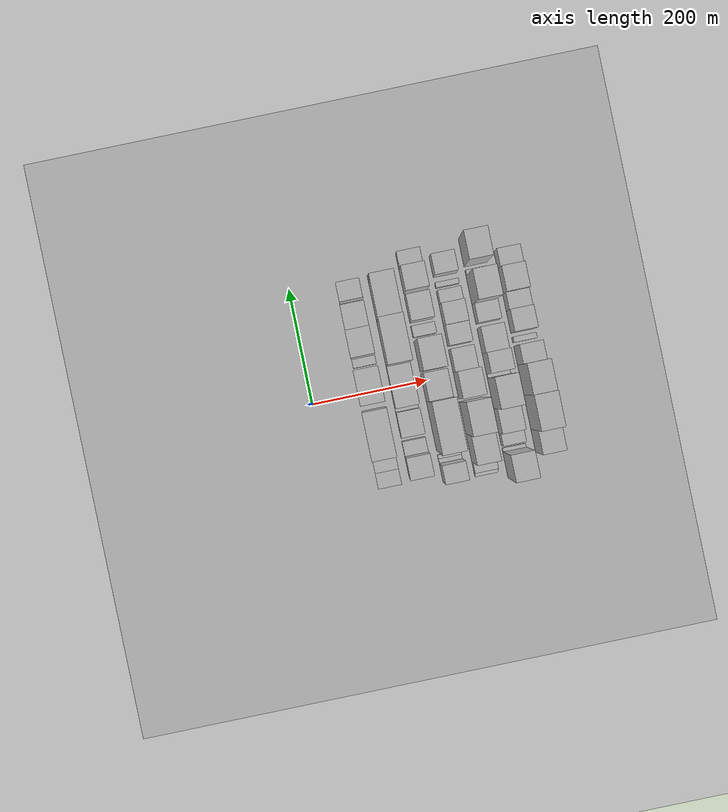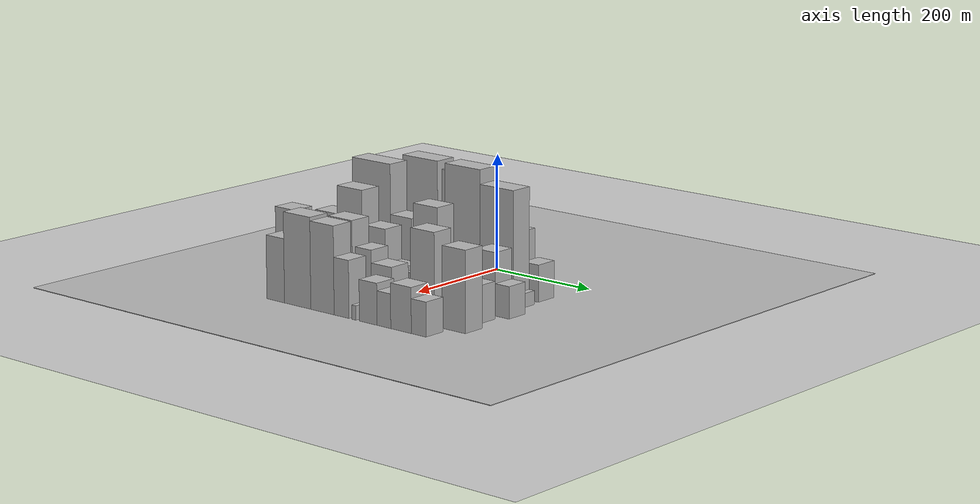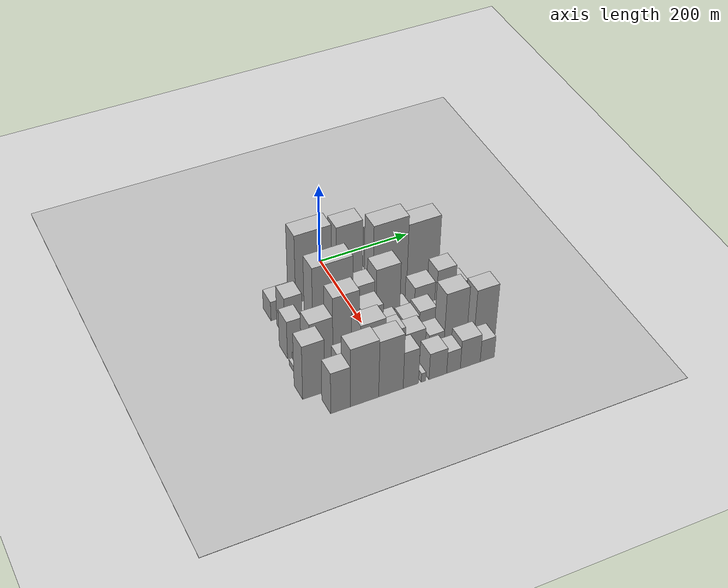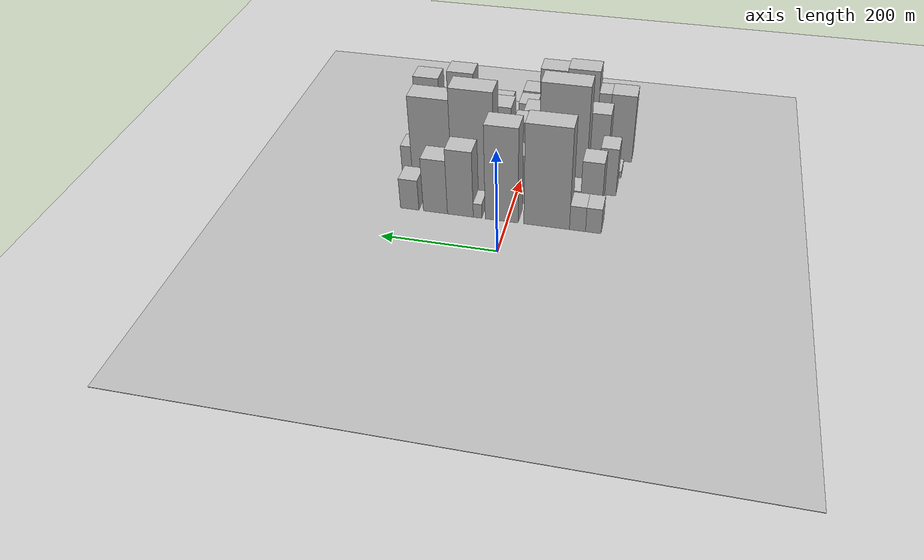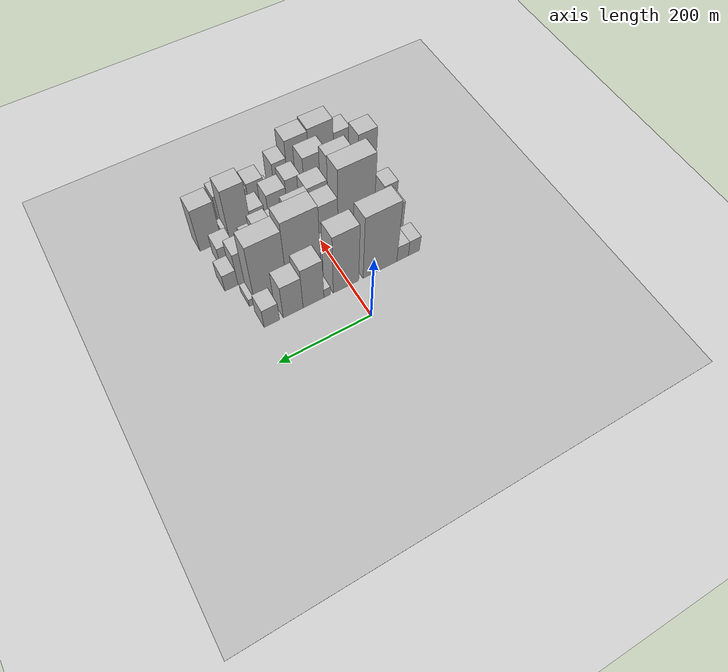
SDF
<sdf version="1.6">
 <world name="default">
  <include><name>ground_plane_1</name><uri>model://HANNAS_ground_plane</uri></include>
  <include>
   <name>ground_plane_2</name>
   <uri>model://HANNAS_ground_plane</uri>
   <pose>100 0 0  0 0 0</pose>
  </include>
  <model name="building_25">
   <static>1</static>
   <pose>100.0000 -148.1943 0 0.000000 0.000000 0.000000</pose>
   <link name="link">
    <pose>0 0 25.50 0 0 0</pose>
    <collision name="collision"><geometry><box><size>40.0000 26.5778 51.0000</size></box></geometry></collision>
    <visual name="visual">
     <cast_shadows>0</cast_shadows>
     <geometry><box><size>40.0000 26.5778 51.0000</size></box></geometry>
     <material>
      <script>
       <uri>model://HANNAS_wall/materials/scripts</uri>
       <uri>model://HANNAS_wall/materials/textures</uri>
       <name>vrc/HANNAS_wall</name>
      </script>
     </material>
    </visual>
   </link>
  </model>
  <model name="building_26">
   <static>1</static>
   <pose>100.0000 -121.1936 0 0.000000 0.000000 0.000000</pose>
   <link name="link">
    <pose>0 0 25.50 0 0 0</pose>
    <collision name="collision"><geometry><box><size>40.0000 27.4237 51.0000</size></box></geometry></collision>
    <visual name="visual">
     <cast_shadows>0</cast_shadows>
     <geometry><box><size>40.0000 27.4237 51.0000</size></box></geometry>
     <material>
      <script>
       <uri>model://HANNAS_wall/materials/scripts</uri>
       <uri>model://HANNAS_wall/materials/textures</uri>
       <name>vrc/HANNAS_wall</name>
      </script>
     </material>
    </visual>
   </link>
  </model>
  <model name="building_27">
   <static>1</static>
   <pose>100.0000 -68.1438 0 0.000000 0.000000 0.000000</pose>
   <link name="link">
    <pose>0 0 102.00 0 0 0</pose>
    <collision name="collision"><geometry><box><size>40.0000 78.6760 204.0000</size></box></geometry></collision>
    <visual name="visual">
     <cast_shadows>0</cast_shadows>
     <geometry><box><size>40.0000 78.6760 204.0000</size></box></geometry>
     <material>
      <script>
       <uri>model://HANNAS_wall/materials/scripts</uri>
       <uri>model://HANNAS_wall/materials/textures</uri>
       <name>vrc/HANNAS_wall</name>
      </script>
     </material>
    </visual>
   </link>
  </model>
  <model name="building_28">
   <static>1</static>
   <pose>100.0000 10.0778 0 0.000000 0.000000 0.000000</pose>
   <link name="link">
    <pose>0 0 96.00 0 0 0</pose>
    <collision name="collision"><geometry><box><size>40.0000 57.7671 192.0000</size></box></geometry></collision>
    <visual name="visual">
     <cast_shadows>0</cast_shadows>
     <geometry><box><size>40.0000 57.7671 192.0000</size></box></geometry>
     <material>
      <script>
       <uri>model://HANNAS_wall/materials/scripts</uri>
       <uri>model://HANNAS_wall/materials/textures</uri>
       <name>vrc/HANNAS_wall</name>
      </script>
     </material>
    </visual>
   </link>
  </model>
  <model name="building_29">
   <static>1</static>
   <pose>100.0000 52.5139 0 0.000000 0.000000 0.000000</pose>
   <link name="link">
    <pose>0 0 15.00 0 0 0</pose>
    <collision name="collision"><geometry><box><size>40.0000 15.1052 30.0000</size></box></geometry></collision>
    <visual name="visual">
     <cast_shadows>0</cast_shadows>
     <geometry><box><size>40.0000 15.1052 30.0000</size></box></geometry>
     <material>
      <script>
       <uri>model://HANNAS_wall/materials/scripts</uri>
       <uri>model://HANNAS_wall/materials/textures</uri>
       <name>vrc/HANNAS_wall</name>
      </script>
     </material>
    </visual>
   </link>
  </model>
  <model name="building_30">
   <static>1</static>
   <pose>100.0000 83.0617 0 0.000000 0.000000 0.000000</pose>
   <link name="link">
    <pose>0 0 67.50 0 0 0</pose>
    <collision name="collision"><geometry><box><size>40.0000 45.9904 135.0000</size></box></geometry></collision>
    <visual name="visual">
     <cast_shadows>0</cast_shadows>
     <geometry><box><size>40.0000 45.9904 135.0000</size></box></geometry>
     <material>
      <script>
       <uri>model://HANNAS_wall/materials/scripts</uri>
       <uri>model://HANNAS_wall/materials/textures</uri>
       <name>vrc/HANNAS_wall</name>
      </script>
     </material>
    </visual>
   </link>
  </model>
  <model name="building_31">
   <static>1</static>
   <pose>100.0000 127.6087 0 0.000000 0.000000 0.000000</pose>
   <link name="link">
    <pose>0 0 55.50 0 0 0</pose>
    <collision name="collision"><geometry><box><size>40.0000 43.1036 111.0000</size></box></geometry></collision>
    <visual name="visual">
     <cast_shadows>0</cast_shadows>
     <geometry><box><size>40.0000 43.1036 111.0000</size></box></geometry>
     <material>
      <script>
       <uri>model://HANNAS_wall/materials/scripts</uri>
       <uri>model://HANNAS_wall/materials/textures</uri>
       <name>vrc/HANNAS_wall</name>
      </script>
     </material>
    </visual>
   </link>
  </model>
  <model name="building_32">
   <static>1</static>
   <pose>100.0000 173.8281 0 0.000000 0.000000 0.000000</pose>
   <link name="link">
    <pose>0 0 31.50 0 0 0</pose>
    <collision name="collision"><geometry><box><size>40.0000 33.3352 63.0000</size></box></geometry></collision>
    <visual name="visual">
     <cast_shadows>0</cast_shadows>
     <geometry><box><size>40.0000 33.3352 63.0000</size></box></geometry>
     <material>
      <script>
       <uri>model://HANNAS_wall/materials/scripts</uri>
       <uri>model://HANNAS_wall/materials/textures</uri>
       <name>vrc/HANNAS_wall</name>
      </script>
     </material>
    </visual>
   </link>
  </model>
  <model name="building_72">
   <static>1</static>
   <pose>155.0000 -136.3937 0 0.000000 0.000000 0.000000</pose>
   <link name="link">
    <pose>0 0 52.50 0 0 0</pose>
    <collision name="collision"><geometry><box><size>40.0000 37.5116 105.0000</size></box></geometry></collision>
    <visual name="visual">
     <cast_shadows>0</cast_shadows>
     <geometry><box><size>40.0000 37.5116 105.0000</size></box></geometry>
     <material>
      <script>
       <uri>model://HANNAS_wall/materials/scripts</uri>
       <uri>model://HANNAS_wall/materials/textures</uri>
       <name>vrc/HANNAS_wall</name>
      </script>
     </material>
    </visual>
   </link>
  </model>
  <model name="building_73">
   <static>1</static>
   <pose>155.0000 -105.1017 0 0.000000 0.000000 0.000000</pose>
   <link name="link">
    <pose>0 0 21.00 0 0 0</pose>
    <collision name="collision"><geometry><box><size>40.0000 25.0723 42.0000</size></box></geometry></collision>
    <visual name="visual">
     <cast_shadows>0</cast_shadows>
     <geometry><box><size>40.0000 25.0723 42.0000</size></box></geometry>
     <material>
      <script>
       <uri>model://HANNAS_wall/materials/scripts</uri>
       <uri>model://HANNAS_wall/materials/textures</uri>
       <name>vrc/HANNAS_wall</name>
      </script>
     </material>
    </visual>
   </link>
  </model>
  <model name="building_74">
   <static>1</static>
   <pose>155.0000 -63.8630 0 0.000000 0.000000 0.000000</pose>
   <link name="link">
    <pose>0 0 37.50 0 0 0</pose>
    <collision name="collision"><geometry><box><size>40.0000 43.4051 75.0000</size></box></geometry></collision>
    <visual name="visual">
     <cast_shadows>0</cast_shadows>
     <geometry><box><size>40.0000 43.4051 75.0000</size></box></geometry>
     <material>
      <script>
       <uri>model://HANNAS_wall/materials/scripts</uri>
       <uri>model://HANNAS_wall/materials/textures</uri>
       <name>vrc/HANNAS_wall</name>
      </script>
     </material>
    </visual>
   </link>
  </model>
  <model name="building_75">
   <static>1</static>
   <pose>155.0000 -38.7111 0 0.000000 0.000000 0.000000</pose>
   <link name="link">
    <pose>0 0 7.50 0 0 0</pose>
    <collision name="collision"><geometry><box><size>40.0000 6.8988 15.0000</size></box></geometry></collision>
    <visual name="visual">
     <cast_shadows>0</cast_shadows>
     <geometry><box><size>40.0000 6.8988 15.0000</size></box></geometry>
     <material>
      <script>
       <uri>model://HANNAS_wall/materials/scripts</uri>
       <uri>model://HANNAS_wall/materials/textures</uri>
       <name>vrc/HANNAS_wall</name>
      </script>
     </material>
    </visual>
   </link>
  </model>
  <model name="building_76">
   <static>1</static>
   <pose>155.0000 -17.6326 0 0.000000 0.000000 0.000000</pose>
   <link name="link">
    <pose>0 0 51.00 0 0 0</pose>
    <collision name="collision"><geometry><box><size>40.0000 35.2581 102.0000</size></box></geometry></collision>
    <visual name="visual">
     <cast_shadows>0</cast_shadows>
     <geometry><box><size>40.0000 35.2581 102.0000</size></box></geometry>
     <material>
      <script>
       <uri>model://HANNAS_wall/materials/scripts</uri>
       <uri>model://HANNAS_wall/materials/textures</uri>
       <name>vrc/HANNAS_wall</name>
      </script>
     </material>
    </visual>
   </link>
  </model>
  <model name="building_77">
   <static>1</static>
   <pose>155.0000 17.8826 0 0.000000 0.000000 0.000000</pose>
   <link name="link">
    <pose>0 0 34.50 0 0 0</pose>
    <collision name="collision"><geometry><box><size>40.0000 35.7725 69.0000</size></box></geometry></collision>
    <visual name="visual">
     <cast_shadows>0</cast_shadows>
     <geometry><box><size>40.0000 35.7725 69.0000</size></box></geometry>
     <material>
      <script>
       <uri>model://HANNAS_wall/materials/scripts</uri>
       <uri>model://HANNAS_wall/materials/textures</uri>
       <name>vrc/HANNAS_wall</name>
      </script>
     </material>
    </visual>
   </link>
  </model>
  <model name="building_78">
   <static>1</static>
   <pose>155.0000 73.6876 0 0.000000 0.000000 0.000000</pose>
   <link name="link">
    <pose>0 0 109.50 0 0 0</pose>
    <collision name="collision"><geometry><box><size>40.0000 75.8374 219.0000</size></box></geometry></collision>
    <visual name="visual">
     <cast_shadows>0</cast_shadows>
     <geometry><box><size>40.0000 75.8374 219.0000</size></box></geometry>
     <material>
      <script>
       <uri>model://HANNAS_wall/materials/scripts</uri>
       <uri>model://HANNAS_wall/materials/textures</uri>
       <name>vrc/HANNAS_wall</name>
      </script>
     </material>
    </visual>
   </link>
  </model>
  <model name="building_79">
   <static>1</static>
   <pose>155.0000 147.2306 0 0.000000 0.000000 0.000000</pose>
   <link name="link">
    <pose>0 0 97.50 0 0 0</pose>
    <collision name="collision"><geometry><box><size>40.0000 71.2486 195.0000</size></box></geometry></collision>
    <visual name="visual">
     <cast_shadows>0</cast_shadows>
     <geometry><box><size>40.0000 71.2486 195.0000</size></box></geometry>
     <material>
      <script>
       <uri>model://HANNAS_wall/materials/scripts</uri>
       <uri>model://HANNAS_wall/materials/textures</uri>
       <name>vrc/HANNAS_wall</name>
      </script>
     </material>
    </visual>
   </link>
  </model>
  <model name="building_80">
   <static>1</static>
   <pose>155.0000 188.7575 0 0.000000 0.000000 0.000000</pose>
   <link name="link">
    <pose>0 0 12.00 0 0 0</pose>
    <collision name="collision"><geometry><box><size>40.0000 11.8053 24.0000</size></box></geometry></collision>
    <visual name="visual">
     <cast_shadows>0</cast_shadows>
     <geometry><box><size>40.0000 11.8053 24.0000</size></box></geometry>
     <material>
      <script>
       <uri>model://HANNAS_wall/materials/scripts</uri>
       <uri>model://HANNAS_wall/materials/textures</uri>
       <name>vrc/HANNAS_wall</name>
      </script>
     </material>
    </visual>
   </link>
  </model>
  <model name="building_120">
   <static>1</static>
   <pose>210.0000 -157.8847 0 0.000000 0.000000 0.000000</pose>
   <link name="link">
    <pose>0 0 49.50 0 0 0</pose>
    <collision name="collision"><geometry><box><size>40.0000 31.7828 99.0000</size></box></geometry></collision>
    <visual name="visual">
     <cast_shadows>0</cast_shadows>
     <geometry><box><size>40.0000 31.7828 99.0000</size></box></geometry>
     <material>
      <script>
       <uri>model://HANNAS_wall/materials/scripts</uri>
       <uri>model://HANNAS_wall/materials/textures</uri>
       <name>vrc/HANNAS_wall</name>
      </script>
     </material>
    </visual>
   </link>
  </model>
  <model name="building_121">
   <static>1</static>
   <pose>210.0000 -138.2729 0 0.000000 0.000000 0.000000</pose>
   <link name="link">
    <pose>0 0 7.50 0 0 0</pose>
    <collision name="collision"><geometry><box><size>40.0000 7.4409 15.0000</size></box></geometry></collision>
    <visual name="visual">
     <cast_shadows>0</cast_shadows>
     <geometry><box><size>40.0000 7.4409 15.0000</size></box></geometry>
     <material>
      <script>
       <uri>model://HANNAS_wall/materials/scripts</uri>
       <uri>model://HANNAS_wall/materials/textures</uri>
       <name>vrc/HANNAS_wall</name>
      </script>
     </material>
    </visual>
   </link>
  </model>
  <model name="building_122">
   <static>1</static>
   <pose>210.0000 -131.0907 0 0.000000 0.000000 0.000000</pose>
   <link name="link">
    <pose>0 0 7.50 0 0 0</pose>
    <collision name="collision"><geometry><box><size>40.0000 6.9236 15.0000</size></box></geometry></collision>
    <visual name="visual">
     <cast_shadows>0</cast_shadows>
     <geometry><box><size>40.0000 6.9236 15.0000</size></box></geometry>
     <material>
      <script>
       <uri>model://HANNAS_wall/materials/scripts</uri>
       <uri>model://HANNAS_wall/materials/textures</uri>
       <name>vrc/HANNAS_wall</name>
      </script>
     </material>
    </visual>
   </link>
  </model>
  <model name="building_123">
   <static>1</static>
   <pose>210.0000 -77.0937 0 0.000000 0.000000 0.000000</pose>
   <link name="link">
    <pose>0 0 108.00 0 0 0</pose>
    <collision name="collision"><geometry><box><size>40.0000 85.0703 216.0000</size></box></geometry></collision>
    <visual name="visual">
     <cast_shadows>0</cast_shadows>
     <geometry><box><size>40.0000 85.0703 216.0000</size></box></geometry>
     <material>
      <script>
       <uri>model://HANNAS_wall/materials/scripts</uri>
       <uri>model://HANNAS_wall/materials/textures</uri>
       <name>vrc/HANNAS_wall</name>
      </script>
     </material>
    </visual>
   </link>
  </model>
  <model name="building_124">
   <static>1</static>
   <pose>210.0000 -10.9256 0 0.000000 0.000000 0.000000</pose>
   <link name="link">
    <pose>0 0 66.00 0 0 0</pose>
    <collision name="collision"><geometry><box><size>40.0000 47.2660 132.0000</size></box></geometry></collision>
    <visual name="visual">
     <cast_shadows>0</cast_shadows>
     <geometry><box><size>40.0000 47.2660 132.0000</size></box></geometry>
     <material>
      <script>
       <uri>model://HANNAS_wall/materials/scripts</uri>
       <uri>model://HANNAS_wall/materials/textures</uri>
       <name>vrc/HANNAS_wall</name>
      </script>
     </material>
    </visual>
   </link>
  </model>
  <model name="building_125">
   <static>1</static>
   <pose>210.0000 41.9455 0 0.000000 0.000000 0.000000</pose>
   <link name="link">
    <pose>0 0 79.50 0 0 0</pose>
    <collision name="collision"><geometry><box><size>40.0000 52.4761 159.0000</size></box></geometry></collision>
    <visual name="visual">
     <cast_shadows>0</cast_shadows>
     <geometry><box><size>40.0000 52.4761 159.0000</size></box></geometry>
     <material>
      <script>
       <uri>model://HANNAS_wall/materials/scripts</uri>
       <uri>model://HANNAS_wall/materials/textures</uri>
       <name>vrc/HANNAS_wall</name>
      </script>
     </material>
    </visual>
   </link>
  </model>
  <model name="building_126">
   <static>1</static>
   <pose>210.0000 85.0455 0 0.000000 0.000000 0.000000</pose>
   <link name="link">
    <pose>0 0 16.50 0 0 0</pose>
    <collision name="collision"><geometry><box><size>40.0000 19.7239 33.0000</size></box></geometry></collision>
    <visual name="visual">
     <cast_shadows>0</cast_shadows>
     <geometry><box><size>40.0000 19.7239 33.0000</size></box></geometry>
     <material>
      <script>
       <uri>model://HANNAS_wall/materials/scripts</uri>
       <uri>model://HANNAS_wall/materials/textures</uri>
       <name>vrc/HANNAS_wall</name>
      </script>
     </material>
    </visual>
   </link>
  </model>
  <model name="building_127">
   <static>1</static>
   <pose>210.0000 123.6763 0 0.000000 0.000000 0.000000</pose>
   <link name="link">
    <pose>0 0 39.00 0 0 0</pose>
    <collision name="collision"><geometry><box><size>40.0000 45.5378 78.0000</size></box></geometry></collision>
    <visual name="visual">
     <cast_shadows>0</cast_shadows>
     <geometry><box><size>40.0000 45.5378 78.0000</size></box></geometry>
     <material>
      <script>
       <uri>model://HANNAS_wall/materials/scripts</uri>
       <uri>model://HANNAS_wall/materials/textures</uri>
       <name>vrc/HANNAS_wall</name>
      </script>
     </material>
    </visual>
   </link>
  </model>
  <model name="building_128">
   <static>1</static>
   <pose>210.0000 171.4161 0 0.000000 0.000000 0.000000</pose>
   <link name="link">
    <pose>0 0 52.50 0 0 0</pose>
    <collision name="collision"><geometry><box><size>40.0000 41.9418 105.0000</size></box></geometry></collision>
    <visual name="visual">
     <cast_shadows>0</cast_shadows>
     <geometry><box><size>40.0000 41.9418 105.0000</size></box></geometry>
     <material>
      <script>
       <uri>model://HANNAS_wall/materials/scripts</uri>
       <uri>model://HANNAS_wall/materials/textures</uri>
       <name>vrc/HANNAS_wall</name>
      </script>
     </material>
    </visual>
   </link>
  </model>
  <model name="building_129">
   <static>1</static>
   <pose>210.0000 206.7017 0 0.000000 0.000000 0.000000</pose>
   <link name="link">
    <pose>0 0 27.00 0 0 0</pose>
    <collision name="collision"><geometry><box><size>40.0000 28.6295 54.0000</size></box></geometry></collision>
    <visual name="visual">
     <cast_shadows>0</cast_shadows>
     <geometry><box><size>40.0000 28.6295 54.0000</size></box></geometry>
     <material>
      <script>
       <uri>model://HANNAS_wall/materials/scripts</uri>
       <uri>model://HANNAS_wall/materials/textures</uri>
       <name>vrc/HANNAS_wall</name>
      </script>
     </material>
    </visual>
   </link>
  </model>
  <model name="building_173">
   <static>1</static>
   <pose>265.0000 -173.5120 0 0.000000 0.000000 0.000000</pose>
   <link name="link">
    <pose>0 0 7.50 0 0 0</pose>
    <collision name="collision"><geometry><box><size>40.0000 6.9740 15.0000</size></box></geometry></collision>
    <visual name="visual">
     <cast_shadows>0</cast_shadows>
     <geometry><box><size>40.0000 6.9740 15.0000</size></box></geometry>
     <material>
      <script>
       <uri>model://HANNAS_wall/materials/scripts</uri>
       <uri>model://HANNAS_wall/materials/textures</uri>
       <name>vrc/HANNAS_wall</name>
      </script>
     </material>
    </visual>
   </link>
  </model>
  <model name="building_174">
   <static>1</static>
   <pose>265.0000 -160.6924 0 0.000000 0.000000 0.000000</pose>
   <link name="link">
    <pose>0 0 16.50 0 0 0</pose>
    <collision name="collision"><geometry><box><size>40.0000 18.6652 33.0000</size></box></geometry></collision>
    <visual name="visual">
     <cast_shadows>0</cast_shadows>
     <geometry><box><size>40.0000 18.6652 33.0000</size></box></geometry>
     <material>
      <script>
       <uri>model://HANNAS_wall/materials/scripts</uri>
       <uri>model://HANNAS_wall/materials/textures</uri>
       <name>vrc/HANNAS_wall</name>
      </script>
     </material>
    </visual>
   </link>
  </model>
  <model name="building_175">
   <static>1</static>
   <pose>265.0000 -126.9499 0 0.000000 0.000000 0.000000</pose>
   <link name="link">
    <pose>0 0 66.00 0 0 0</pose>
    <collision name="collision"><geometry><box><size>40.0000 48.8199 132.0000</size></box></geometry></collision>
    <visual name="visual">
     <cast_shadows>0</cast_shadows>
     <geometry><box><size>40.0000 48.8199 132.0000</size></box></geometry>
     <material>
      <script>
       <uri>model://HANNAS_wall/materials/scripts</uri>
       <uri>model://HANNAS_wall/materials/textures</uri>
       <name>vrc/HANNAS_wall</name>
      </script>
     </material>
    </visual>
   </link>
  </model>
  <model name="building_176">
   <static>1</static>
   <pose>265.0000 -74.6069 0 0.000000 0.000000 0.000000</pose>
   <link name="link">
    <pose>0 0 90.00 0 0 0</pose>
    <collision name="collision"><geometry><box><size>40.0000 55.8662 180.0000</size></box></geometry></collision>
    <visual name="visual">
     <cast_shadows>0</cast_shadows>
     <geometry><box><size>40.0000 55.8662 180.0000</size></box></geometry>
     <material>
      <script>
       <uri>model://HANNAS_wall/materials/scripts</uri>
       <uri>model://HANNAS_wall/materials/textures</uri>
       <name>vrc/HANNAS_wall</name>
      </script>
     </material>
    </visual>
   </link>
  </model>
  <model name="building_177">
   <static>1</static>
   <pose>265.0000 -18.9260 0 0.000000 0.000000 0.000000</pose>
   <link name="link">
    <pose>0 0 61.50 0 0 0</pose>
    <collision name="collision"><geometry><box><size>40.0000 45.4956 123.0000</size></box></geometry></collision>
    <visual name="visual">
     <cast_shadows>0</cast_shadows>
     <geometry><box><size>40.0000 45.4956 123.0000</size></box></geometry>
     <material>
      <script>
       <uri>model://HANNAS_wall/materials/scripts</uri>
       <uri>model://HANNAS_wall/materials/textures</uri>
       <name>vrc/HANNAS_wall</name>
      </script>
     </material>
    </visual>
   </link>
  </model>
  <model name="building_178">
   <static>1</static>
   <pose>265.0000 23.3437 0 0.000000 0.000000 0.000000</pose>
   <link name="link">
    <pose>0 0 33.00 0 0 0</pose>
    <collision name="collision"><geometry><box><size>40.0000 39.0437 66.0000</size></box></geometry></collision>
    <visual name="visual">
     <cast_shadows>0</cast_shadows>
     <geometry><box><size>40.0000 39.0437 66.0000</size></box></geometry>
     <material>
      <script>
       <uri>model://HANNAS_wall/materials/scripts</uri>
       <uri>model://HANNAS_wall/materials/textures</uri>
       <name>vrc/HANNAS_wall</name>
      </script>
     </material>
    </visual>
   </link>
  </model>
  <model name="building_179">
   <static>1</static>
   <pose>265.0000 66.2562 0 0.000000 0.000000 0.000000</pose>
   <link name="link">
    <pose>0 0 30.00 0 0 0</pose>
    <collision name="collision"><geometry><box><size>40.0000 34.7813 60.0000</size></box></geometry></collision>
    <visual name="visual">
     <cast_shadows>0</cast_shadows>
     <geometry><box><size>40.0000 34.7813 60.0000</size></box></geometry>
     <material>
      <script>
       <uri>model://HANNAS_wall/materials/scripts</uri>
       <uri>model://HANNAS_wall/materials/textures</uri>
       <name>vrc/HANNAS_wall</name>
      </script>
     </material>
    </visual>
   </link>
  </model>
  <model name="building_180">
   <static>1</static>
   <pose>265.0000 102.1321 0 0.000000 0.000000 0.000000</pose>
   <link name="link">
    <pose>0 0 34.50 0 0 0</pose>
    <collision name="collision"><geometry><box><size>40.0000 36.9703 69.0000</size></box></geometry></collision>
    <visual name="visual">
     <cast_shadows>0</cast_shadows>
     <geometry><box><size>40.0000 36.9703 69.0000</size></box></geometry>
     <material>
      <script>
       <uri>model://HANNAS_wall/materials/scripts</uri>
       <uri>model://HANNAS_wall/materials/textures</uri>
       <name>vrc/HANNAS_wall</name>
      </script>
     </material>
    </visual>
   </link>
  </model>
  <model name="building_181">
   <static>1</static>
   <pose>265.0000 132.2702 0 0.000000 0.000000 0.000000</pose>
   <link name="link">
    <pose>0 0 22.50 0 0 0</pose>
    <collision name="collision"><geometry><box><size>40.0000 23.3059 45.0000</size></box></geometry></collision>
    <visual name="visual">
     <cast_shadows>0</cast_shadows>
     <geometry><box><size>40.0000 23.3059 45.0000</size></box></geometry>
     <material>
      <script>
       <uri>model://HANNAS_wall/materials/scripts</uri>
       <uri>model://HANNAS_wall/materials/textures</uri>
       <name>vrc/HANNAS_wall</name>
      </script>
     </material>
    </visual>
   </link>
  </model>
  <model name="building_182">
   <static>1</static>
   <pose>265.0000 154.5119 0 0.000000 0.000000 0.000000</pose>
   <link name="link">
    <pose>0 0 10.50 0 0 0</pose>
    <collision name="collision"><geometry><box><size>40.0000 9.1776 21.0000</size></box></geometry></collision>
    <visual name="visual">
     <cast_shadows>0</cast_shadows>
     <geometry><box><size>40.0000 9.1776 21.0000</size></box></geometry>
     <material>
      <script>
       <uri>model://HANNAS_wall/materials/scripts</uri>
       <uri>model://HANNAS_wall/materials/textures</uri>
       <name>vrc/HANNAS_wall</name>
      </script>
     </material>
    </visual>
   </link>
  </model>
  <model name="building_183">
   <static>1</static>
   <pose>265.0000 186.7774 0 0.000000 0.000000 0.000000</pose>
   <link name="link">
    <pose>0 0 31.50 0 0 0</pose>
    <collision name="collision"><geometry><box><size>40.0000 35.3532 63.0000</size></box></geometry></collision>
    <visual name="visual">
     <cast_shadows>0</cast_shadows>
     <geometry><box><size>40.0000 35.3532 63.0000</size></box></geometry>
     <material>
      <script>
       <uri>model://HANNAS_wall/materials/scripts</uri>
       <uri>model://HANNAS_wall/materials/textures</uri>
       <name>vrc/HANNAS_wall</name>
      </script>
     </material>
    </visual>
   </link>
  </model>
  <model name="building_217">
   <static>1</static>
   <pose>320.0000 -167.8851 0 0.000000 0.000000 0.000000</pose>
   <link name="link">
    <pose>0 0 70.50 0 0 0</pose>
    <collision name="collision"><geometry><box><size>40.0000 45.4304 141.0000</size></box></geometry></collision>
    <visual name="visual">
     <cast_shadows>0</cast_shadows>
     <geometry><box><size>40.0000 45.4304 141.0000</size></box></geometry>
     <material>
      <script>
       <uri>model://HANNAS_wall/materials/scripts</uri>
       <uri>model://HANNAS_wall/materials/textures</uri>
       <name>vrc/HANNAS_wall</name>
      </script>
     </material>
    </visual>
   </link>
  </model>
  <model name="building_218">
   <static>1</static>
   <pose>320.0000 -141.9161 0 0.000000 0.000000 0.000000</pose>
   <link name="link">
    <pose>0 0 7.50 0 0 0</pose>
    <collision name="collision"><geometry><box><size>40.0000 6.5077 15.0000</size></box></geometry></collision>
    <visual name="visual">
     <cast_shadows>0</cast_shadows>
     <geometry><box><size>40.0000 6.5077 15.0000</size></box></geometry>
     <material>
      <script>
       <uri>model://HANNAS_wall/materials/scripts</uri>
       <uri>model://HANNAS_wall/materials/textures</uri>
       <name>vrc/HANNAS_wall</name>
      </script>
     </material>
    </visual>
   </link>
  </model>
  <model name="building_219">
   <static>1</static>
   <pose>320.0000 -123.7646 0 0.000000 0.000000 0.000000</pose>
   <link name="link">
    <pose>0 0 19.50 0 0 0</pose>
    <collision name="collision"><geometry><box><size>40.0000 21.7951 39.0000</size></box></geometry></collision>
    <visual name="visual">
     <cast_shadows>0</cast_shadows>
     <geometry><box><size>40.0000 21.7951 39.0000</size></box></geometry>
     <material>
      <script>
       <uri>model://HANNAS_wall/materials/scripts</uri>
       <uri>model://HANNAS_wall/materials/textures</uri>
       <name>vrc/HANNAS_wall</name>
      </script>
     </material>
    </visual>
   </link>
  </model>
  <model name="building_220">
   <static>1</static>
   <pose>320.0000 -91.5321 0 0.000000 0.000000 0.000000</pose>
   <link name="link">
    <pose>0 0 37.50 0 0 0</pose>
    <collision name="collision"><geometry><box><size>40.0000 42.6700 75.0000</size></box></geometry></collision>
    <visual name="visual">
     <cast_shadows>0</cast_shadows>
     <geometry><box><size>40.0000 42.6700 75.0000</size></box></geometry>
     <material>
      <script>
       <uri>model://HANNAS_wall/materials/scripts</uri>
       <uri>model://HANNAS_wall/materials/textures</uri>
       <name>vrc/HANNAS_wall</name>
      </script>
     </material>
    </visual>
   </link>
  </model>
  <model name="building_221">
   <static>1</static>
   <pose>320.0000 -43.8277 0 0.000000 0.000000 0.000000</pose>
   <link name="link">
    <pose>0 0 72.00 0 0 0</pose>
    <collision name="collision"><geometry><box><size>40.0000 52.7388 144.0000</size></box></geometry></collision>
    <visual name="visual">
     <cast_shadows>0</cast_shadows>
     <geometry><box><size>40.0000 52.7388 144.0000</size></box></geometry>
     <material>
      <script>
       <uri>model://HANNAS_wall/materials/scripts</uri>
       <uri>model://HANNAS_wall/materials/textures</uri>
       <name>vrc/HANNAS_wall</name>
      </script>
     </material>
    </visual>
   </link>
  </model>
  <model name="building_222">
   <static>1</static>
   <pose>320.0000 -13.9754 0 0.000000 0.000000 0.000000</pose>
   <link name="link">
    <pose>0 0 7.50 0 0 0</pose>
    <collision name="collision"><geometry><box><size>40.0000 6.9659 15.0000</size></box></geometry></collision>
    <visual name="visual">
     <cast_shadows>0</cast_shadows>
     <geometry><box><size>40.0000 6.9659 15.0000</size></box></geometry>
     <material>
      <script>
       <uri>model://HANNAS_wall/materials/scripts</uri>
       <uri>model://HANNAS_wall/materials/textures</uri>
       <name>vrc/HANNAS_wall</name>
      </script>
     </material>
    </visual>
   </link>
  </model>
  <model name="building_223">
   <static>1</static>
   <pose>320.0000 6.9612 0 0.000000 0.000000 0.000000</pose>
   <link name="link">
    <pose>0 0 51.00 0 0 0</pose>
    <collision name="collision"><geometry><box><size>40.0000 34.9073 102.0000</size></box></geometry></collision>
    <visual name="visual">
     <cast_shadows>0</cast_shadows>
     <geometry><box><size>40.0000 34.9073 102.0000</size></box></geometry>
     <material>
      <script>
       <uri>model://HANNAS_wall/materials/scripts</uri>
       <uri>model://HANNAS_wall/materials/textures</uri>
       <name>vrc/HANNAS_wall</name>
      </script>
     </material>
    </visual>
   </link>
  </model>
  <model name="building_224">
   <static>1</static>
   <pose>320.0000 46.3474 0 0.000000 0.000000 0.000000</pose>
   <link name="link">
    <pose>0 0 40.50 0 0 0</pose>
    <collision name="collision"><geometry><box><size>40.0000 43.8651 81.0000</size></box></geometry></collision>
    <visual name="visual">
     <cast_shadows>0</cast_shadows>
     <geometry><box><size>40.0000 43.8651 81.0000</size></box></geometry>
     <material>
      <script>
       <uri>model://HANNAS_wall/materials/scripts</uri>
       <uri>model://HANNAS_wall/materials/textures</uri>
       <name>vrc/HANNAS_wall</name>
      </script>
     </material>
    </visual>
   </link>
  </model>
  <model name="building_225">
   <static>1</static>
   <pose>320.0000 92.8470 0 0.000000 0.000000 0.000000</pose>
   <link name="link">
    <pose>0 0 28.50 0 0 0</pose>
    <collision name="collision"><geometry><box><size>40.0000 33.1341 57.0000</size></box></geometry></collision>
    <visual name="visual">
     <cast_shadows>0</cast_shadows>
     <geometry><box><size>40.0000 33.1341 57.0000</size></box></geometry>
     <material>
      <script>
       <uri>model://HANNAS_wall/materials/scripts</uri>
       <uri>model://HANNAS_wall/materials/textures</uri>
       <name>vrc/HANNAS_wall</name>
      </script>
     </material>
    </visual>
   </link>
  </model>
  <model name="building_226">
   <static>1</static>
   <pose>320.0000 134.4624 0 0.000000 0.000000 0.000000</pose>
   <link name="link">
    <pose>0 0 76.50 0 0 0</pose>
    <collision name="collision"><geometry><box><size>40.0000 50.0967 153.0000</size></box></geometry></collision>
    <visual name="visual">
     <cast_shadows>0</cast_shadows>
     <geometry><box><size>40.0000 50.0967 153.0000</size></box></geometry>
     <material>
      <script>
       <uri>model://HANNAS_wall/materials/scripts</uri>
       <uri>model://HANNAS_wall/materials/textures</uri>
       <name>vrc/HANNAS_wall</name>
      </script>
     </material>
    </visual>
   </link>
  </model>
  <model name="building_227">
   <static>1</static>
   <pose>320.0000 164.4455 0 0.000000 0.000000 0.000000</pose>
   <link name="link">
    <pose>0 0 10.50 0 0 0</pose>
    <collision name="collision"><geometry><box><size>40.0000 9.8694 21.0000</size></box></geometry></collision>
    <visual name="visual">
     <cast_shadows>0</cast_shadows>
     <geometry><box><size>40.0000 9.8694 21.0000</size></box></geometry>
     <material>
      <script>
       <uri>model://HANNAS_wall/materials/scripts</uri>
       <uri>model://HANNAS_wall/materials/textures</uri>
       <name>vrc/HANNAS_wall</name>
      </script>
     </material>
    </visual>
   </link>
  </model>
  <model name="building_228">
   <static>1</static>
   <pose>320.0000 200.5421 0 0.000000 0.000000 0.000000</pose>
   <link name="link">
    <pose>0 0 67.50 0 0 0</pose>
    <collision name="collision"><geometry><box><size>40.0000 48.3239 135.0000</size></box></geometry></collision>
    <visual name="visual">
     <cast_shadows>0</cast_shadows>
     <geometry><box><size>40.0000 48.3239 135.0000</size></box></geometry>
     <material>
      <script>
       <uri>model://HANNAS_wall/materials/scripts</uri>
       <uri>model://HANNAS_wall/materials/textures</uri>
       <name>vrc/HANNAS_wall</name>
      </script>
     </material>
    </visual>
   </link>
  </model>
  <model name="building_270">
   <static>1</static>
   <pose>375.0000 -137.7010 0 0.000000 0.000000 0.000000</pose>
   <link name="link">
    <pose>0 0 54.00 0 0 0</pose>
    <collision name="collision"><geometry><box><size>40.0000 40.2761 108.0000</size></box></geometry></collision>
    <visual name="visual">
     <cast_shadows>0</cast_shadows>
     <geometry><box><size>40.0000 40.2761 108.0000</size></box></geometry>
     <material>
      <script>
       <uri>model://HANNAS_wall/materials/scripts</uri>
       <uri>model://HANNAS_wall/materials/textures</uri>
       <name>vrc/HANNAS_wall</name>
      </script>
     </material>
    </visual>
   </link>
  </model>
  <model name="building_271">
   <static>1</static>
   <pose>375.0000 -87.8041 0 0.000000 0.000000 0.000000</pose>
   <link name="link">
    <pose>0 0 76.50 0 0 0</pose>
    <collision name="collision"><geometry><box><size>40.0000 59.5178 153.0000</size></box></geometry></collision>
    <visual name="visual">
     <cast_shadows>0</cast_shadows>
     <geometry><box><size>40.0000 59.5178 153.0000</size></box></geometry>
     <material>
      <script>
       <uri>model://HANNAS_wall/materials/scripts</uri>
       <uri>model://HANNAS_wall/materials/textures</uri>
       <name>vrc/HANNAS_wall</name>
      </script>
     </material>
    </visual>
   </link>
  </model>
  <model name="building_272">
   <static>1</static>
   <pose>375.0000 -32.1201 0 0.000000 0.000000 0.000000</pose>
   <link name="link">
    <pose>0 0 73.50 0 0 0</pose>
    <collision name="collision"><geometry><box><size>40.0000 51.8501 147.0000</size></box></geometry></collision>
    <visual name="visual">
     <cast_shadows>0</cast_shadows>
     <geometry><box><size>40.0000 51.8501 147.0000</size></box></geometry>
     <material>
      <script>
       <uri>model://HANNAS_wall/materials/scripts</uri>
       <uri>model://HANNAS_wall/materials/textures</uri>
       <name>vrc/HANNAS_wall</name>
      </script>
     </material>
    </visual>
   </link>
  </model>
  <model name="building_273">
   <static>1</static>
   <pose>375.0000 10.1213 0 0.000000 0.000000 0.000000</pose>
   <link name="link">
    <pose>0 0 48.00 0 0 0</pose>
    <collision name="collision"><geometry><box><size>40.0000 32.6327 96.0000</size></box></geometry></collision>
    <visual name="visual">
     <cast_shadows>0</cast_shadows>
     <geometry><box><size>40.0000 32.6327 96.0000</size></box></geometry>
     <material>
      <script>
       <uri>model://HANNAS_wall/materials/scripts</uri>
       <uri>model://HANNAS_wall/materials/textures</uri>
       <name>vrc/HANNAS_wall</name>
      </script>
     </material>
    </visual>
   </link>
  </model>
  <model name="building_274">
   <static>1</static>
   <pose>375.0000 37.2499 0 0.000000 0.000000 0.000000</pose>
   <link name="link">
    <pose>0 0 12.00 0 0 0</pose>
    <collision name="collision"><geometry><box><size>40.0000 9.6245 24.0000</size></box></geometry></collision>
    <visual name="visual">
     <cast_shadows>0</cast_shadows>
     <geometry><box><size>40.0000 9.6245 24.0000</size></box></geometry>
     <material>
      <script>
       <uri>model://HANNAS_wall/materials/scripts</uri>
       <uri>model://HANNAS_wall/materials/textures</uri>
       <name>vrc/HANNAS_wall</name>
      </script>
     </material>
    </visual>
   </link>
  </model>
  <model name="building_275">
   <static>1</static>
   <pose>375.0000 68.1338 0 0.000000 0.000000 0.000000</pose>
   <link name="link">
    <pose>0 0 34.50 0 0 0</pose>
    <collision name="collision"><geometry><box><size>40.0000 38.1433 69.0000</size></box></geometry></collision>
    <visual name="visual">
     <cast_shadows>0</cast_shadows>
     <geometry><box><size>40.0000 38.1433 69.0000</size></box></geometry>
     <material>
      <script>
       <uri>model://HANNAS_wall/materials/scripts</uri>
       <uri>model://HANNAS_wall/materials/textures</uri>
       <name>vrc/HANNAS_wall</name>
      </script>
     </material>
    </visual>
   </link>
  </model>
  <model name="building_276">
   <static>1</static>
   <pose>375.0000 102.0283 0 0.000000 0.000000 0.000000</pose>
   <link name="link">
    <pose>0 0 28.50 0 0 0</pose>
    <collision name="collision"><geometry><box><size>40.0000 29.6456 57.0000</size></box></geometry></collision>
    <visual name="visual">
     <cast_shadows>0</cast_shadows>
     <geometry><box><size>40.0000 29.6456 57.0000</size></box></geometry>
     <material>
      <script>
       <uri>model://HANNAS_wall/materials/scripts</uri>
       <uri>model://HANNAS_wall/materials/textures</uri>
       <name>vrc/HANNAS_wall</name>
      </script>
     </material>
    </visual>
   </link>
  </model>
  <model name="building_277">
   <static>1</static>
   <pose>375.0000 138.6402 0 0.000000 0.000000 0.000000</pose>
   <link name="link">
    <pose>0 0 37.50 0 0 0</pose>
    <collision name="collision"><geometry><box><size>40.0000 43.5783 75.0000</size></box></geometry></collision>
    <visual name="visual">
     <cast_shadows>0</cast_shadows>
     <geometry><box><size>40.0000 43.5783 75.0000</size></box></geometry>
     <material>
      <script>
       <uri>model://HANNAS_wall/materials/scripts</uri>
       <uri>model://HANNAS_wall/materials/textures</uri>
       <name>vrc/HANNAS_wall</name>
      </script>
     </material>
    </visual>
   </link>
  </model>
  <model name="building_278">
   <static>1</static>
   <pose>375.0000 175.9245 0 0.000000 0.000000 0.000000</pose>
   <link name="link">
    <pose>0 0 28.50 0 0 0</pose>
    <collision name="collision"><geometry><box><size>40.0000 30.9903 57.0000</size></box></geometry></collision>
    <visual name="visual">
     <cast_shadows>0</cast_shadows>
     <geometry><box><size>40.0000 30.9903 57.0000</size></box></geometry>
     <material>
      <script>
       <uri>model://HANNAS_wall/materials/scripts</uri>
       <uri>model://HANNAS_wall/materials/textures</uri>
       <name>vrc/HANNAS_wall</name>
      </script>
     </material>
    </visual>
   </link>
  </model>
 </world>
</sdf>
